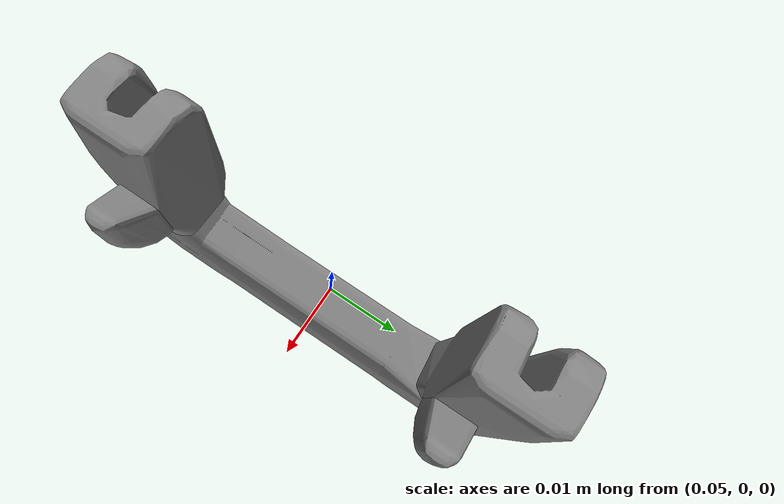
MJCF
<mujoco model="fork">
  <!-- Convex decomposition of Cozmo fork lift for accurate physics sim -->

  <compiler angle="radian" meshdir="./assets/meshes" autolimits="true"/>

  <asset>
    <material name="fork_mat" rgba="0.12 0.12 0.12 1"/>
    <mesh name="fork_bottom" content_type="model/obj" file="fork/fork_bottom.obj" scale="0.01 0.01 0.01"/>
    <mesh name="fork_left" content_type="model/obj" file="fork/fork_left.obj" scale="0.01 0.01 0.01"/>
    <mesh name="fork_right" content_type="model/obj" file="fork/fork_right.obj" scale="0.01 0.01 0.01"/>
    <mesh name="tine_left" content_type="model/obj" file="fork/tine_left.obj" scale="0.01 0.01 0.01"/>
    <mesh name="tine_right" content_type="model/obj" file="fork/tine_right.obj" scale="0.01 0.01 0.01"/>
  </asset>

  <worldbody>
    <body name="fork" pos="0 0 0">
      <joint name="right_lower_pivot" pos="0.0515 -0.0192 0.0182" axis="0 -1 0" armature="0.0005" damping="0.02"/>

      <inertial pos="0.053754 0.000109 0.015779" mass="0.009"
                fullinertia="3.285023e-06 7.675117e-07 2.617684e-06 1.932247e-11 4.205440e-09 -7.205558e-12"/>

      <!-- Collision -->
      <geom name="fork_bottom" type="mesh" mesh="fork_bottom" mass="0"
            contype="2" conaffinity="1" friction="1.0 0.005 0.0001"/>
      <geom name="fork_left" type="mesh" mesh="fork_left" mass="0"
            contype="2" conaffinity="1" friction="1.0 0.005 0.0001"/>
      <geom name="fork_right" type="mesh" mesh="fork_right" mass="0"
            contype="2" conaffinity="1" friction="1.0 0.005 0.0001"/>
      <geom name="tine_left" type="mesh" mesh="tine_left" mass="0"
            contype="2" conaffinity="1" friction="1.0 0.005 0.0001"/>
      <geom name="tine_right" type="mesh" mesh="tine_right" mass="0"
            contype="2" conaffinity="1" friction="1.0 0.005 0.0001"/>
    </body>
  </worldbody>
</mujoco>
